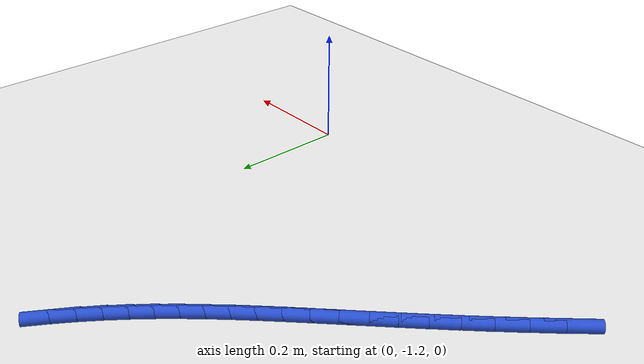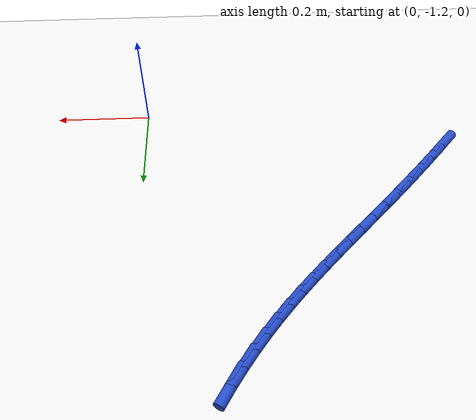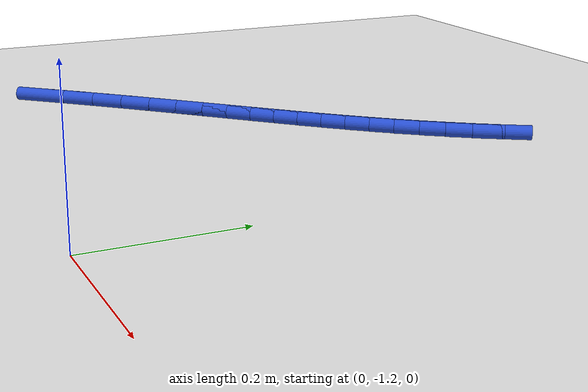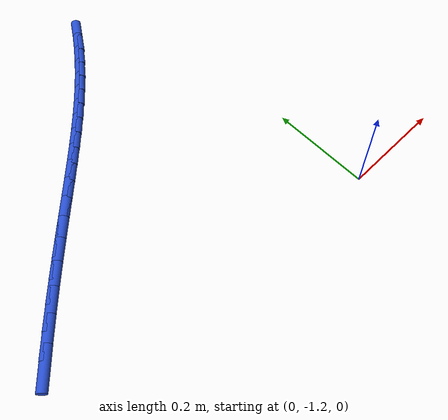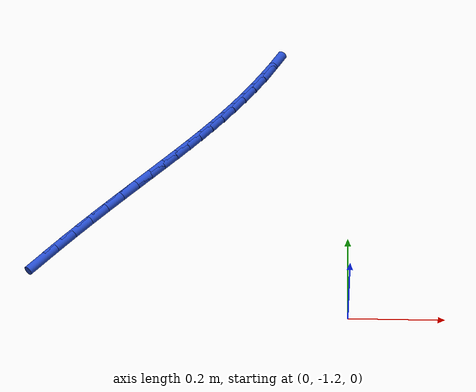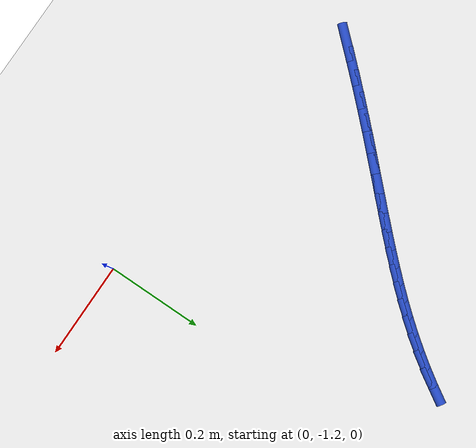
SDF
<sdf version="1.6">
 <world name="default">
  <model name="ground_plane">
   <static>1</static>
   <link name="link">
    <collision name="collision">
     <geometry><plane><normal>0 0 1</normal><size>100 100</size></plane></geometry>
     <surface><friction><ode><mu>100</mu><mu2>50</mu2></ode></friction></surface>
    </collision>
    <visual name="visual">
     <cast_shadows>0</cast_shadows>
     <geometry><plane><normal>0 0 1</normal><size>100 100</size></plane></geometry>
     <material>
      <script><uri>file://media/materials/scripts/gazebo.material</uri><name>Gazebo/WhiteGlow</name></script>
     </material>
    </visual>
   </link>
  </model>
  <model name="line">
   <link name="link_187">
    <pose>-0.6374798470221589 -1.0711512692505694 0.01 0 1.57 0.8293117834770786</pose>
    <collision name="collision">
     <geometry><cylinder><radius>0.01</radius><length>0.08</length></cylinder></geometry>
    </collision>
    <visual name="visual">
     <material>
      <script><name>Gazebo/Blue</name><uri>file://media/materials/scripts/gazebo.material</uri></script>
     </material>
     <geometry><cylinder><radius>0.01</radius><length>0.08</length></cylinder></geometry>
    </visual>
   </link>
   <link name="link_188">
    <pose>-0.6031921109224391 -1.0337117013074206 0.01 0 1.57 0.81723900019177</pose>
    <collision name="collision">
     <geometry><cylinder><radius>0.01</radius><length>0.08</length></cylinder></geometry>
    </collision>
    <visual name="visual">
     <material>
      <script><name>Gazebo/Blue</name><uri>file://media/materials/scripts/gazebo.material</uri></script>
     </material>
     <geometry><cylinder><radius>0.01</radius><length>0.08</length></cylinder></geometry>
    </visual>
   </link>
   <link name="link_189">
    <pose>-0.5700527123515714 -0.9983917632157683 0.01 0 1.57 0.8062563599134239</pose>
    <collision name="collision">
     <geometry><cylinder><radius>0.01</radius><length>0.08</length></cylinder></geometry>
    </collision>
    <visual name="visual">
     <material>
      <script><name>Gazebo/Blue</name><uri>file://media/materials/scripts/gazebo.material</uri></script>
     </material>
     <geometry><cylinder><radius>0.01</radius><length>0.08</length></cylinder></geometry>
    </visual>
   </link>
   <link name="link_190">
    <pose>-0.5380317398263577 -0.965006333211852 0.01 0 1.57 0.7969526978934579</pose>
    <collision name="collision">
     <geometry><cylinder><radius>0.01</radius><length>0.08</length></cylinder></geometry>
    </collision>
    <visual name="visual">
     <material>
      <script><name>Gazebo/Blue</name><uri>file://media/materials/scripts/gazebo.material</uri></script>
     </material>
     <geometry><cylinder><radius>0.01</radius><length>0.08</length></cylinder></geometry>
    </visual>
   </link>
   <link name="link_191">
    <pose>-0.5070892897333364 -0.9333404406688771 0.01 0 1.57 0.7896850556675497</pose>
    <collision name="collision">
     <geometry><cylinder><radius>0.01</radius><length>0.08</length></cylinder></geometry>
    </collision>
    <visual name="visual">
     <material>
      <script><name>Gazebo/Blue</name><uri>file://media/materials/scripts/gazebo.material</uri></script>
     </material>
     <geometry><cylinder><radius>0.01</radius><length>0.08</length></cylinder></geometry>
    </visual>
   </link>
   <link name="link_192">
    <pose>-0.4771854584590449 -0.903179114960047 0.01 0 1.57 0.7848203097002382</pose>
    <collision name="collision">
     <geometry><cylinder><radius>0.01</radius><length>0.08</length></cylinder></geometry>
    </collision>
    <visual name="visual">
     <material>
      <script><name>Gazebo/Blue</name><uri>file://media/materials/scripts/gazebo.material</uri></script>
     </material>
     <geometry><cylinder><radius>0.01</radius><length>0.08</length></cylinder></geometry>
    </visual>
   </link>
   <link name="link_193">
    <pose>-0.4482803423900208 -0.874307385458565 0.01 0 1.57 0.7827216101638316</pose>
    <collision name="collision">
     <geometry><cylinder><radius>0.01</radius><length>0.08</length></cylinder></geometry>
    </collision>
    <visual name="visual">
     <material>
      <script><name>Gazebo/Blue</name><uri>file://media/materials/scripts/gazebo.material</uri></script>
     </material>
     <geometry><cylinder><radius>0.01</radius><length>0.08</length></cylinder></geometry>
    </visual>
   </link>
   <link name="link_194">
    <pose>-0.42033403791280144 -0.8465102815376345 0.01 0 1.57 0.7837313848191152</pose>
    <collision name="collision">
     <geometry><cylinder><radius>0.01</radius><length>0.08</length></cylinder></geometry>
    </collision>
    <visual name="visual">
     <material>
      <script><name>Gazebo/Blue</name><uri>file://media/materials/scripts/gazebo.material</uri></script>
     </material>
     <geometry><cylinder><radius>0.01</radius><length>0.08</length></cylinder></geometry>
    </visual>
   </link>
   <link name="link_195">
    <pose>-0.39330664141392396 -0.8195728325704589 0.01 0 1.57 0.7881511946110582</pose>
    <collision name="collision">
     <geometry><cylinder><radius>0.01</radius><length>0.08</length></cylinder></geometry>
    </collision>
    <visual name="visual">
     <material>
      <script><name>Gazebo/Blue</name><uri>file://media/materials/scripts/gazebo.material</uri></script>
     </material>
     <geometry><cylinder><radius>0.01</radius><length>0.08</length></cylinder></geometry>
    </visual>
   </link>
   <link name="link_196">
    <pose>-0.367158249279927 -0.7932800679302427 0.01 0 1.57 0.796219203006591</pose>
    <collision name="collision">
     <geometry><cylinder><radius>0.01</radius><length>0.08</length></cylinder></geometry>
    </collision>
    <visual name="visual">
     <material>
      <script><name>Gazebo/Blue</name><uri>file://media/materials/scripts/gazebo.material</uri></script>
     </material>
     <geometry><cylinder><radius>0.01</radius><length>0.08</length></cylinder></geometry>
    </visual>
   </link>
   <link name="link_197">
    <pose>-0.34184895789734776 -0.7674170169901893 0.01 0 1.57 0.8080866515137709</pose>
    <collision name="collision">
     <geometry><cylinder><radius>0.01</radius><length>0.08</length></cylinder></geometry>
    </collision>
    <visual name="visual">
     <material>
      <script><name>Gazebo/Blue</name><uri>file://media/materials/scripts/gazebo.material</uri></script>
     </material>
     <geometry><cylinder><radius>0.01</radius><length>0.08</length></cylinder></geometry>
    </visual>
   </link>
   <link name="link_198">
    <pose>-0.31733886365272385 -0.7417687091235021 0.01 0 1.57 0.823795480290628</pose>
    <collision name="collision">
     <geometry><cylinder><radius>0.01</radius><length>0.08</length></cylinder></geometry>
    </collision>
    <visual name="visual">
     <material>
      <script><name>Gazebo/Blue</name><uri>file://media/materials/scripts/gazebo.material</uri></script>
     </material>
     <geometry><cylinder><radius>0.01</radius><length>0.08</length></cylinder></geometry>
    </visual>
   </link>
   <link name="link_199">
    <pose>-0.2935880629325921 -0.7161201737033842 0.01 0 1.57 0.8432599666199213</pose>
    <collision name="collision">
     <geometry><cylinder><radius>0.01</radius><length>0.08</length></cylinder></geometry>
    </collision>
    <visual name="visual">
     <material>
      <script><name>Gazebo/Blue</name><uri>file://media/materials/scripts/gazebo.material</uri></script>
     </material>
     <geometry><cylinder><radius>0.01</radius><length>0.08</length></cylinder></geometry>
    </visual>
   </link>
   <link name="link_200">
    <pose>-0.27055665212349145 -0.6902564401030404 0.01 0 1.57 0.8662557329898254</pose>
    <collision name="collision">
     <geometry><cylinder><radius>0.01</radius><length>0.08</length></cylinder></geometry>
    </collision>
    <visual name="visual">
     <material>
      <script><name>Gazebo/Blue</name><uri>file://media/materials/scripts/gazebo.material</uri></script>
     </material>
     <geometry><cylinder><radius>0.01</radius><length>0.08</length></cylinder></geometry>
    </visual>
   </link>
   <link name="link_201">
    <pose>-0.24820472761195878 -0.663962537695674 0.01 0 1.57 0.8924193749016301</pose>
    <collision name="collision">
     <geometry><cylinder><radius>0.01</radius><length>0.08</length></cylinder></geometry>
    </collision>
    <visual name="visual">
     <material>
      <script><name>Gazebo/Blue</name><uri>file://media/materials/scripts/gazebo.material</uri></script>
     </material>
     <geometry><cylinder><radius>0.01</radius><length>0.08</length></cylinder></geometry>
    </visual>
   </link>
   <link name="link_202">
    <pose>-0.22649238578453168 -0.6370234958544884 0.01 0 1.57 0.9212609843104013</pose>
    <collision name="collision">
     <geometry><cylinder><radius>0.01</radius><length>0.08</length></cylinder></geometry>
    </collision>
    <visual name="visual">
     <material>
      <script><name>Gazebo/Blue</name><uri>file://media/materials/scripts/gazebo.material</uri></script>
     </material>
     <geometry><cylinder><radius>0.01</radius><length>0.08</length></cylinder></geometry>
    </visual>
   </link>
   <link name="link_203">
    <pose>-0.2053797230277474 -0.6092243439526865 0.01 0 1.57 0.9521899289762628</pose>
    <collision name="collision">
     <geometry><cylinder><radius>0.01</radius><length>0.08</length></cylinder></geometry>
    </collision>
    <visual name="visual">
     <material>
      <script><name>Gazebo/Blue</name><uri>file://media/materials/scripts/gazebo.material</uri></script>
     </material>
     <geometry><cylinder><radius>0.01</radius><length>0.08</length></cylinder></geometry>
    </visual>
   </link>
   <link name="link_204">
    <pose>-0.1848268357281444 -0.5803501113634736 0.01 0 1.57 0.9845517131912667</pose>
    <collision name="collision">
     <geometry><cylinder><radius>0.01</radius><length>0.08</length></cylinder></geometry>
    </collision>
    <visual name="visual">
     <material>
      <script><name>Gazebo/Blue</name><uri>file://media/materials/scripts/gazebo.material</uri></script>
     </material>
     <geometry><cylinder><radius>0.01</radius><length>0.08</length></cylinder></geometry>
    </visual>
   </link>
   <link name="link_205">
    <pose>-0.1647938202722599 -0.5501858274600524 0.01 0 1.57 1.017647554435728</pose>
    <collision name="collision">
     <geometry><cylinder><radius>0.01</radius><length>0.08</length></cylinder></geometry>
    </collision>
    <visual name="visual">
     <material>
      <script><name>Gazebo/Blue</name><uri>file://media/materials/scripts/gazebo.material</uri></script>
     </material>
     <geometry><cylinder><radius>0.01</radius><length>0.08</length></cylinder></geometry>
    </visual>
   </link>
  </model>
 </world>
</sdf>
